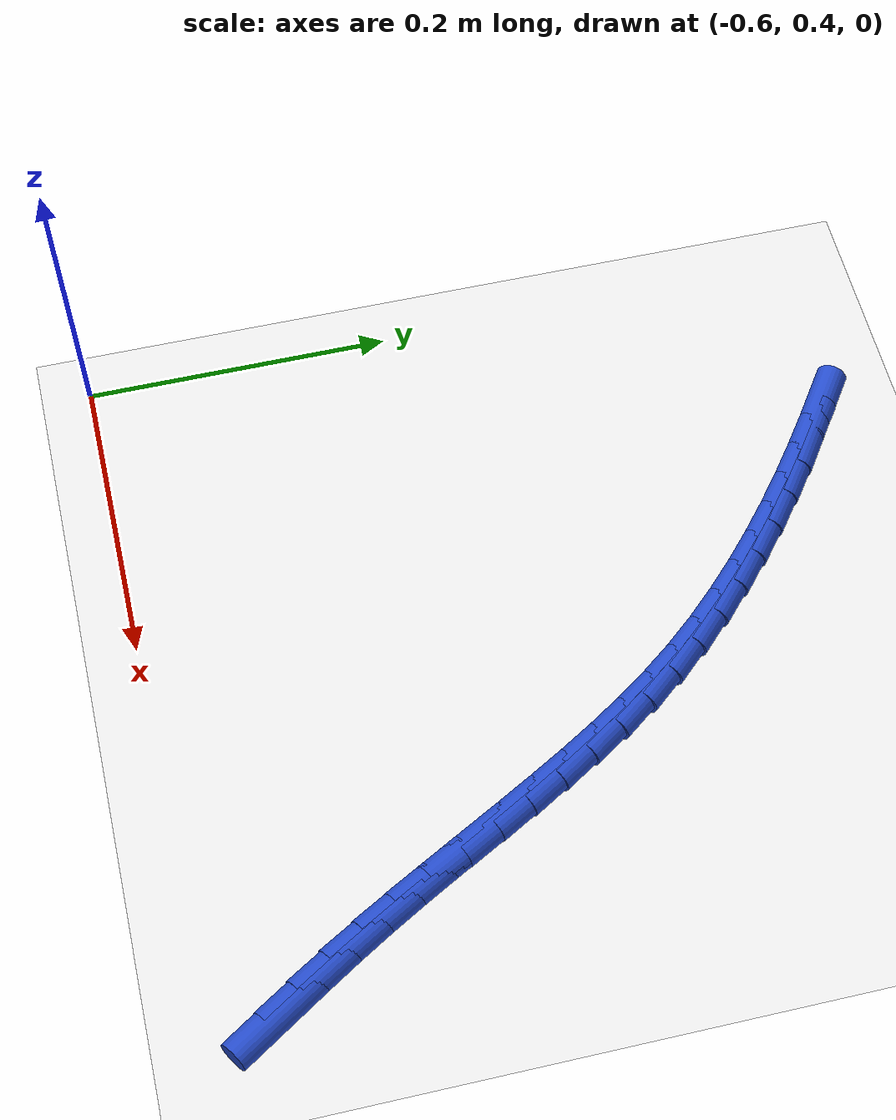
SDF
<sdf version="1.6">
 <world name="default">
  <model name="ground_plane">
   <static>1</static>
   <link name="link">
    <collision name="collision">
     <geometry><plane><normal>0 0 1</normal><size>100 100</size></plane></geometry>
     <surface><friction><ode><mu>100</mu><mu2>50</mu2></ode></friction></surface>
    </collision>
    <visual name="visual">
     <cast_shadows>0</cast_shadows>
     <geometry><plane><normal>0 0 1</normal><size>100 100</size></plane></geometry>
     <material>
      <script><uri>file://media/materials/scripts/gazebo.material</uri><name>Gazebo/WhiteGlow</name></script>
     </material>
    </visual>
   </link>
  </model>
  <model name="line">
   <link name="link_19">
    <pose>-0.14367902467784516 0.44660411493584784 0.01 0 1.57 -0.9990666460265294</pose>
    <collision name="collision">
     <geometry><cylinder><radius>0.01</radius><length>0.08</length></cylinder></geometry>
    </collision>
    <visual name="visual">
     <material>
      <script><name>Gazebo/Blue</name><uri>file://media/materials/scripts/gazebo.material</uri></script>
     </material>
     <geometry><cylinder><radius>0.01</radius><length>0.08</length></cylinder></geometry>
    </visual>
   </link>
   <link name="link_20">
    <pose>-0.15750028604377994 0.4680853286447979 0.01 0 1.57 -1.0113379295031946</pose>
    <collision name="collision">
     <geometry><cylinder><radius>0.01</radius><length>0.08</length></cylinder></geometry>
    </collision>
    <visual name="visual">
     <material>
      <script><name>Gazebo/Blue</name><uri>file://media/materials/scripts/gazebo.material</uri></script>
     </material>
     <geometry><cylinder><radius>0.01</radius><length>0.08</length></cylinder></geometry>
    </visual>
   </link>
   <link name="link_21">
    <pose>-0.17105297968694014 0.4897282467248498 0.01 0 1.57 -1.0301408604105808</pose>
    <collision name="collision">
     <geometry><cylinder><radius>0.01</radius><length>0.08</length></cylinder></geometry>
    </collision>
    <visual name="visual">
     <material>
      <script><name>Gazebo/Blue</name><uri>file://media/materials/scripts/gazebo.material</uri></script>
     </material>
     <geometry><cylinder><radius>0.01</radius><length>0.08</length></cylinder></geometry>
    </visual>
   </link>
   <link name="link_22">
    <pose>-0.18418297655677654 0.511599875001483 0.01 0 1.57 -1.0516298607563073</pose>
    <collision name="collision">
     <geometry><cylinder><radius>0.01</radius><length>0.08</length></cylinder></geometry>
    </collision>
    <visual name="visual">
     <material>
      <script><name>Gazebo/Blue</name><uri>file://media/materials/scripts/gazebo.material</uri></script>
     </material>
     <geometry><cylinder><radius>0.01</radius><length>0.08</length></cylinder></geometry>
    </visual>
   </link>
   <link name="link_23">
    <pose>-0.19682357040221524 0.5337198691546003 0.01 0 1.57 -1.0669363779652152</pose>
    <collision name="collision">
     <geometry><cylinder><radius>0.01</radius><length>0.08</length></cylinder></geometry>
    </collision>
    <visual name="visual">
     <material>
      <script><name>Gazebo/Blue</name><uri>file://media/materials/scripts/gazebo.material</uri></script>
     </material>
     <geometry><cylinder><radius>0.01</radius><length>0.08</length></cylinder></geometry>
    </visual>
   </link>
   <link name="link_24">
    <pose>-0.20910718261338754 0.5560000328751956 0.01 0 1.57 -1.074812422934014</pose>
    <collision name="collision">
     <geometry><cylinder><radius>0.01</radius><length>0.08</length></cylinder></geometry>
    </collision>
    <visual name="visual">
     <material>
      <script><name>Gazebo/Blue</name><uri>file://media/materials/scripts/gazebo.material</uri></script>
     </material>
     <geometry><cylinder><radius>0.01</radius><length>0.08</length></cylinder></geometry>
    </visual>
   </link>
   <link name="link_25">
    <pose>-0.22119382106760366 0.5783372283951507 0.01 0 1.57 -1.0752295521809394</pose>
    <collision name="collision">
     <geometry><cylinder><radius>0.01</radius><length>0.08</length></cylinder></geometry>
    </collision>
    <visual name="visual">
     <material>
      <script><name>Gazebo/Blue</name><uri>file://media/materials/scripts/gazebo.material</uri></script>
     </material>
     <geometry><cylinder><radius>0.01</radius><length>0.08</length></cylinder></geometry>
    </visual>
   </link>
   <link name="link_26">
    <pose>-0.23324349364217345 0.6006283179463463 0.01 0 1.57 -1.068136930244644</pose>
    <collision name="collision">
     <geometry><cylinder><radius>0.01</radius><length>0.08</length></cylinder></geometry>
    </collision>
    <visual name="visual">
     <material>
      <script><name>Gazebo/Blue</name><uri>file://media/materials/scripts/gazebo.material</uri></script>
     </material>
     <geometry><cylinder><radius>0.01</radius><length>0.08</length></cylinder></geometry>
    </visual>
   </link>
   <link name="link_27">
    <pose>-0.2454162082144074 0.6227701637606649 0.01 0 1.57 -1.0534601458558899</pose>
    <collision name="collision">
     <geometry><cylinder><radius>0.01</radius><length>0.08</length></cylinder></geometry>
    </collision>
    <visual name="visual">
     <material>
      <script><name>Gazebo/Blue</name><uri>file://media/materials/scripts/gazebo.material</uri></script>
     </material>
     <geometry><cylinder><radius>0.01</radius><length>0.08</length></cylinder></geometry>
    </visual>
   </link>
   <link name="link_28">
    <pose>-0.2578719726616154 0.6446596280699872 0.01 0 1.57 -1.031112816785467</pose>
    <collision name="collision">
     <geometry><cylinder><radius>0.01</radius><length>0.08</length></cylinder></geometry>
    </collision>
    <visual name="visual">
     <material>
      <script><name>Gazebo/Blue</name><uri>file://media/materials/scripts/gazebo.material</uri></script>
     </material>
     <geometry><cylinder><radius>0.01</radius><length>0.08</length></cylinder></geometry>
    </visual>
   </link>
   <link name="link_29">
    <pose>-0.27077079486110756 0.6661935731061951 0.01 0 1.57 -1.0010219941371528</pose>
    <collision name="collision">
     <geometry><cylinder><radius>0.01</radius><length>0.08</length></cylinder></geometry>
    </collision>
    <visual name="visual">
     <material>
      <script><name>Gazebo/Blue</name><uri>file://media/materials/scripts/gazebo.material</uri></script>
     </material>
     <geometry><cylinder><radius>0.01</radius><length>0.08</length></cylinder></geometry>
    </visual>
   </link>
   <link name="link_30">
    <pose>-0.28427268269019407 0.6872688611011699 0.01 0 1.57 -0.9631682900964806</pose>
    <collision name="collision">
     <geometry><cylinder><radius>0.01</radius><length>0.08</length></cylinder></geometry>
    </collision>
    <visual name="visual">
     <material>
      <script><name>Gazebo/Blue</name><uri>file://media/materials/scripts/gazebo.material</uri></script>
     </material>
     <geometry><cylinder><radius>0.01</radius><length>0.08</length></cylinder></geometry>
    </visual>
   </link>
   <link name="link_31">
    <pose>-0.2985376440261851 0.7077823542867933 0.01 0 1.57 -0.9176427038989327</pose>
    <collision name="collision">
     <geometry><cylinder><radius>0.01</radius><length>0.08</length></cylinder></geometry>
    </collision>
    <visual name="visual">
     <material>
      <script><name>Gazebo/Blue</name><uri>file://media/materials/scripts/gazebo.material</uri></script>
     </material>
     <geometry><cylinder><radius>0.01</radius><length>0.08</length></cylinder></geometry>
    </visual>
   </link>
   <link name="link_32">
    <pose>-0.31372563430440203 0.7276309415227202 0.01 0 1.57 -0.867327904182293</pose>
    <collision name="collision">
     <geometry><cylinder><radius>0.01</radius><length>0.08</length></cylinder></geometry>
    </collision>
    <visual name="visual">
     <material>
      <script><name>Gazebo/Blue</name><uri>file://media/materials/scripts/gazebo.material</uri></script>
     </material>
     <geometry><cylinder><radius>0.01</radius><length>0.08</length></cylinder></geometry>
    </visual>
   </link>
   <link name="link_33">
    <pose>-0.3299363797784009 0.7467420934426271 0.01 0 1.57 -0.8200851813880615</pose>
    <collision name="collision">
     <geometry><cylinder><radius>0.01</radius><length>0.08</length></cylinder></geometry>
    </collision>
    <visual name="visual">
     <material>
      <script><name>Gazebo/Blue</name><uri>file://media/materials/scripts/gazebo.material</uri></script>
     </material>
     <geometry><cylinder><radius>0.01</radius><length>0.08</length></cylinder></geometry>
    </visual>
   </link>
   <link name="link_34">
    <pose>-0.34709346522711926 0.7651327177041435 0.01 0 1.57 -0.777226708189899</pose>
    <collision name="collision">
     <geometry><cylinder><radius>0.01</radius><length>0.08</length></cylinder></geometry>
    </collision>
    <visual name="visual">
     <material>
      <script><name>Gazebo/Blue</name><uri>file://media/materials/scripts/gazebo.material</uri></script>
     </material>
     <geometry><cylinder><radius>0.01</radius><length>0.08</length></cylinder></geometry>
    </visual>
   </link>
   <link name="link_35">
    <pose>-0.3650884458510881 0.7828359851997637 0.01 0 1.57 -0.7386002381840766</pose>
    <collision name="collision">
     <geometry><cylinder><radius>0.01</radius><length>0.08</length></cylinder></geometry>
    </collision>
    <visual name="visual">
     <material>
      <script><name>Gazebo/Blue</name><uri>file://media/materials/scripts/gazebo.material</uri></script>
     </material>
     <geometry><cylinder><radius>0.01</radius><length>0.08</length></cylinder></geometry>
    </visual>
   </link>
   <link name="link_36">
    <pose>-0.3838128768508385 0.7998850668219831 0.01 0 1.57 -0.7040270940454462</pose>
    <collision name="collision">
     <geometry><cylinder><radius>0.01</radius><length>0.08</length></cylinder></geometry>
    </collision>
    <visual name="visual">
     <material>
      <script><name>Gazebo/Blue</name><uri>file://media/materials/scripts/gazebo.material</uri></script>
     </material>
     <geometry><cylinder><radius>0.01</radius><length>0.08</length></cylinder></geometry>
    </visual>
   </link>
   <link name="link_37">
    <pose>-0.4031583134269016 0.8163131334632964 0.01 0 1.57 -0.6733214817426183</pose>
    <collision name="collision">
     <geometry><cylinder><radius>0.01</radius><length>0.08</length></cylinder></geometry>
    </collision>
    <visual name="visual">
     <material>
      <script><name>Gazebo/Blue</name><uri>file://media/materials/scripts/gazebo.material</uri></script>
     </material>
     <geometry><cylinder><radius>0.01</radius><length>0.08</length></cylinder></geometry>
    </visual>
   </link>
   <link name="link_38">
    <pose>-0.42301631077980895 0.8321533560161984 0.01 0 1.57 -0.6463052238405218</pose>
    <collision name="collision">
     <geometry><cylinder><radius>0.01</radius><length>0.08</length></cylinder></geometry>
    </collision>
    <visual name="visual">
     <material>
      <script><name>Gazebo/Blue</name><uri>file://media/materials/scripts/gazebo.material</uri></script>
     </material>
     <geometry><cylinder><radius>0.01</radius><length>0.08</length></cylinder></geometry>
    </visual>
   </link>
   <link name="link_39">
    <pose>-0.4432784241100913 0.8474389053731839 0.01 0 1.57 -0.622744687126072</pose>
    <collision name="collision">
     <geometry><cylinder><radius>0.01</radius><length>0.08</length></cylinder></geometry>
    </collision>
    <visual name="visual">
     <material>
      <script><name>Gazebo/Blue</name><uri>file://media/materials/scripts/gazebo.material</uri></script>
     </material>
     <geometry><cylinder><radius>0.01</radius><length>0.08</length></cylinder></geometry>
    </visual>
   </link>
   <link name="link_40">
    <pose>-0.46383908519687694 0.8622027083370429 0.01 0 1.57 -0.6011629150890239</pose>
    <collision name="collision">
     <geometry><cylinder><radius>0.01</radius><length>0.08</length></cylinder></geometry>
    </collision>
    <visual name="visual">
     <material>
      <script><name>Gazebo/Blue</name><uri>file://media/materials/scripts/gazebo.material</uri></script>
     </material>
     <geometry><cylinder><radius>0.01</radius><length>0.08</length></cylinder></geometry>
    </visual>
   </link>
  </model>
 </world>
</sdf>
